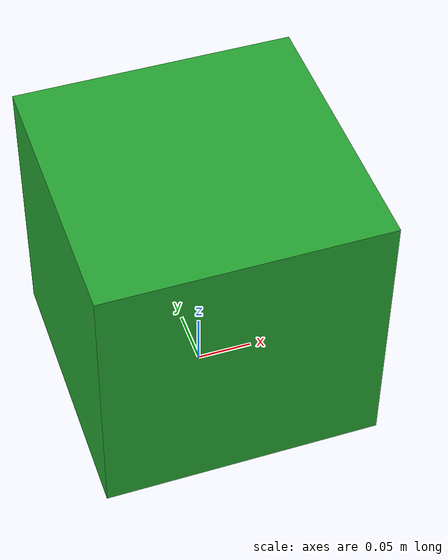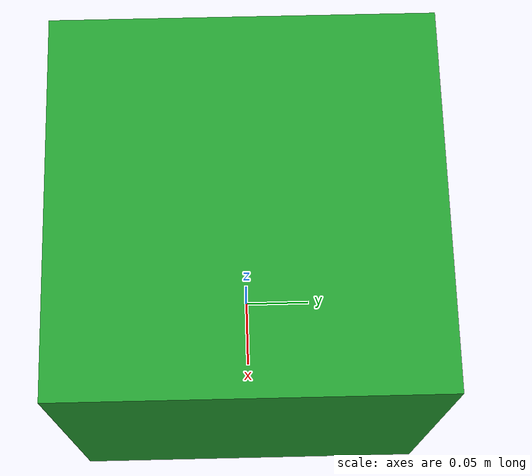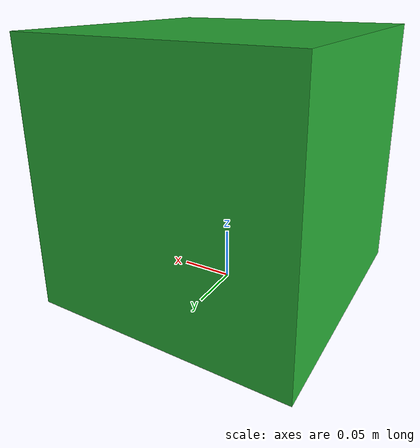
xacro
<?xml version="1.0" ?>
<robot name="box" xmlns:xacro="http://www.ros.org/wiki/xacro">
	<xacro:property name="len" value="0.249"/>
	<xacro:property name="mass" value="0.5"/>

	<link name="base_link">
		<visual>
			<origin xyz="0 0 ${len/2}" rpy="0 0 0"/>
			<geometry>
				<box size="${len} ${len} ${len}"/>
			</geometry>
		</visual>

		<!-- Collision bitmasks not parsed properly currently -->
		<!-- So here's the janky workaround, actually cleaner -->

		<inertial>
			<origin xyz="0 0 ${len/2}" rpy="0 0 0"/>
			<mass value="${mass}"/>
			<inertia
        		ixx="${1/6*mass*len*len}" ixy="0.0" ixz="0.0"
        		iyy="${1/6*mass*len*len}" iyz="0.0"
        		izz="${1/6*mass*len*len}"/>
		</inertial>
	</link>

	<gazebo reference="base_link">
		<visual>
			<plugin name="invisible" filename="libmouse_gazebo.so"/>
		</visual>
		<turnGravityOff>true</turnGravityOff>
		<material>Gazebo/GreenTransparent</material>
	</gazebo>
</robot>
